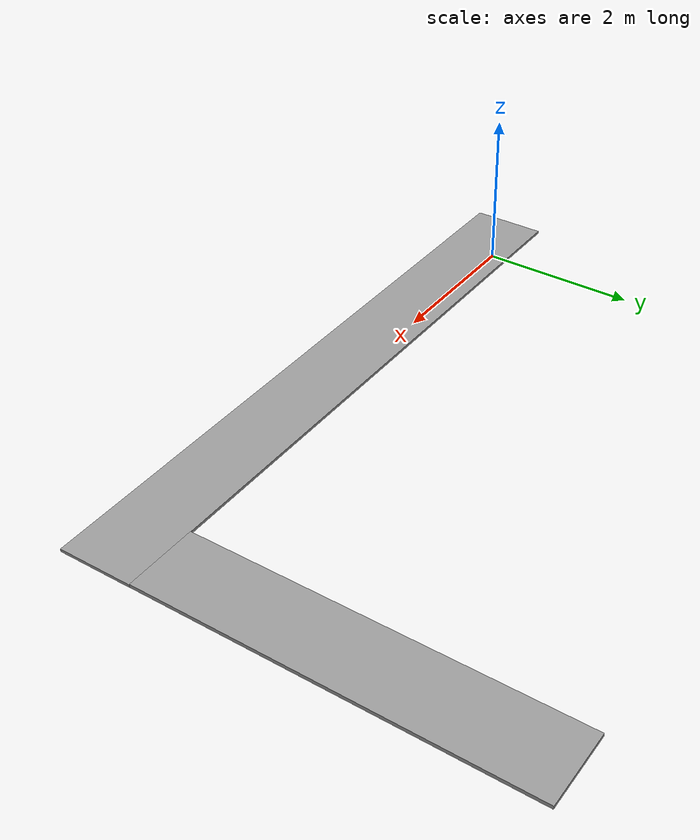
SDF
<?xml version='1.0'?>
<sdf version='1.7'>
  <model name='Floor'>
    <link name='link_0'>
      <inertial>
        <mass>0.351024</mass>
        <inertia>
          <ixx>0.029297</ixx>
          <ixy>0</ixy>
          <ixz>0</ixz>
          <iyy>2.34047</iyy>
          <iyz>0</iyz>
          <izz>2.36968</izz>
        </inertia>
        <pose>0 0 0 0 -0 0</pose>
      </inertial>
      <pose>2.80114 -0.669874 -0.482213 0 -0 0</pose>
      <self_collide>0</self_collide>
      <enable_wind>0</enable_wind>
      <kinematic>0</kinematic>
      <visual name='visual'>
        <pose>0 0 0 0 -0 0</pose>
        <geometry>
          <box>
            <size>8.94479 1 0.039243</size>
          </box>
        </geometry>
        <material>
          <lighting>1</lighting>
          <script>
            <uri>file://media/materials/scripts/gazebo.material</uri>
            <name>Gazebo/Grey</name>
          </script>
          <shader type='pixel'/>
        </material>
        <transparency>0</transparency>
        <cast_shadows>1</cast_shadows>
      </visual>
      <collision name='collision'>
        <laser_retro>0</laser_retro>
        <max_contacts>10</max_contacts>
        <pose>0 0 0 0 -0 0</pose>
        <geometry>
          <box>
            <size>8.94479 1 0.039243</size>
          </box>
        </geometry>
        <surface>
          <friction>
            <ode>
              <mu>1</mu>
              <mu2>1</mu2>
              <fdir1>0 0 0</fdir1>
              <slip1>0</slip1>
              <slip2>0</slip2>
            </ode>
            <torsional>
              <coefficient>1</coefficient>
              <patch_radius>0</patch_radius>
              <surface_radius>0</surface_radius>
              <use_patch_radius>1</use_patch_radius>
              <ode>
                <slip>0</slip>
              </ode>
            </torsional>
          </friction>
          <bounce>
            <restitution_coefficient>0</restitution_coefficient>
            <threshold>1e+06</threshold>
          </bounce>
          <contact>
            <collide_without_contact>0</collide_without_contact>
            <collide_without_contact_bitmask>1</collide_without_contact_bitmask>
            <collide_bitmask>1</collide_bitmask>
            <ode>
              <soft_cfm>0</soft_cfm>
              <soft_erp>0.2</soft_erp>
              <kp>1e+13</kp>
              <kd>1</kd>
              <max_vel>0.01</max_vel>
              <min_depth>0</min_depth>
            </ode>
            <bullet>
              <split_impulse>1</split_impulse>
              <split_impulse_penetration_threshold>-0.01</split_impulse_penetration_threshold>
              <soft_cfm>0</soft_cfm>
              <soft_erp>0.2</soft_erp>
              <kp>1e+13</kp>
              <kd>1</kd>
            </bullet>
          </contact>
        </surface>
      </collision>
    </link>
    <link name='link_3'>
      <inertial>
        <mass>0.24113</mass>
        <inertia>
          <ixx>0.517785</ixx>
          <ixy>0</ixy>
          <ixz>0</ixz>
          <iyy>0.0201395</iyy>
          <iyz>0</iyz>
          <izz>0.537834</izz>
        </inertia>
        <pose>0 0 0 0 -0 0</pose>
      </inertial>
      <pose>6.77199 2.36819 -0.477217 0 -0 0</pose>
      <self_collide>0</self_collide>
      <enable_wind>0</enable_wind>
      <kinematic>0</kinematic>
      <visual name='visual'>
        <pose>0 0 0 0 -0 0</pose>
        <geometry>
          <box>
            <size>1 5.07599 0.047508</size>
          </box>
        </geometry>
        <material>
          <lighting>1</lighting>
          <script>
            <uri>file://media/materials/scripts/gazebo.material</uri>
            <name>Gazebo/Grey</name>
          </script>
          <shader type='pixel'/>
        </material>
        <transparency>0</transparency>
        <cast_shadows>1</cast_shadows>
      </visual>
      <collision name='collision'>
        <laser_retro>0</laser_retro>
        <max_contacts>10</max_contacts>
        <pose>0 0 0 0 -0 0</pose>
        <geometry>
          <box>
            <size>1 5.07599 0.047508</size>
          </box>
        </geometry>
        <surface>
          <friction>
            <ode>
              <mu>1</mu>
              <mu2>1</mu2>
              <fdir1>0 0 0</fdir1>
              <slip1>0</slip1>
              <slip2>0</slip2>
            </ode>
            <torsional>
              <coefficient>1</coefficient>
              <patch_radius>0</patch_radius>
              <surface_radius>0</surface_radius>
              <use_patch_radius>1</use_patch_radius>
              <ode>
                <slip>0</slip>
              </ode>
            </torsional>
          </friction>
          <bounce>
            <restitution_coefficient>0</restitution_coefficient>
            <threshold>1e+06</threshold>
          </bounce>
          <contact>
            <collide_without_contact>0</collide_without_contact>
            <collide_without_contact_bitmask>1</collide_without_contact_bitmask>
            <collide_bitmask>1</collide_bitmask>
            <ode>
              <soft_cfm>0</soft_cfm>
              <soft_erp>0.2</soft_erp>
              <kp>1e+13</kp>
              <kd>1</kd>
              <max_vel>0.01</max_vel>
              <min_depth>0</min_depth>
            </ode>
            <bullet>
              <split_impulse>1</split_impulse>
              <split_impulse_penetration_threshold>-0.01</split_impulse_penetration_threshold>
              <soft_cfm>0</soft_cfm>
              <soft_erp>0.2</soft_erp>
              <kp>1e+13</kp>
              <kd>1</kd>
            </bullet>
          </contact>
        </surface>
      </collision>
    </link>
    <static>0</static>
    <allow_auto_disable>1</allow_auto_disable>
  </model>
</sdf>
